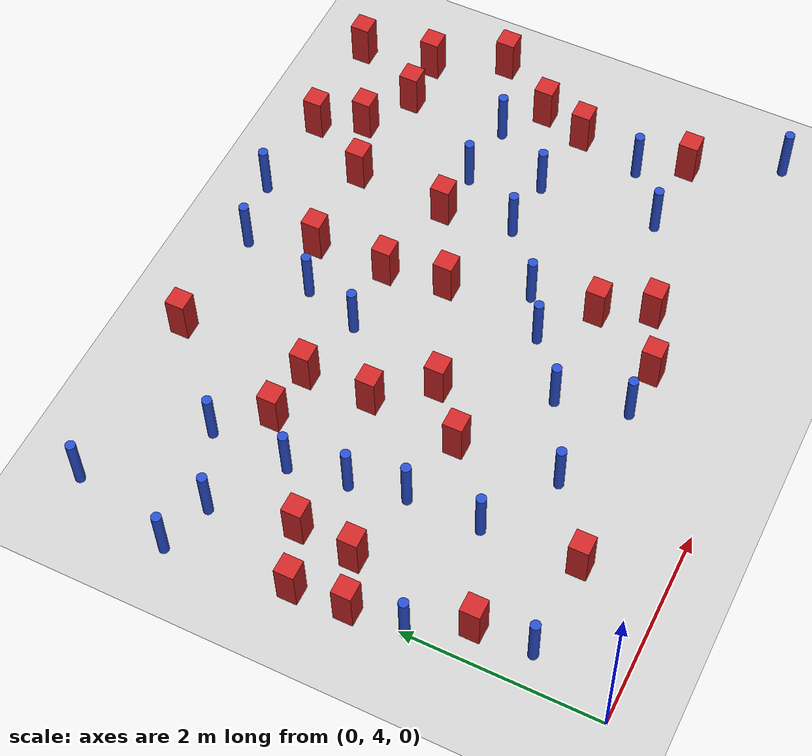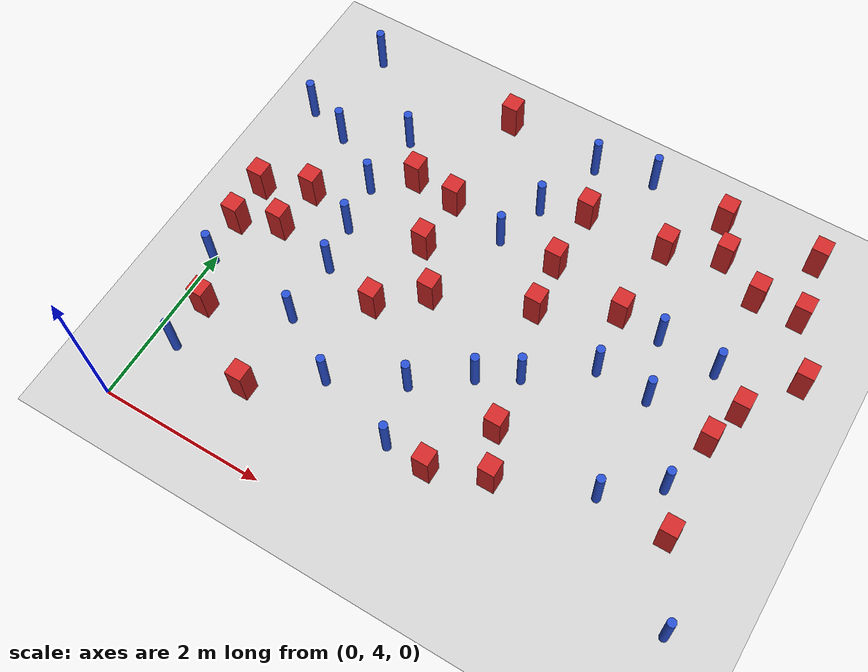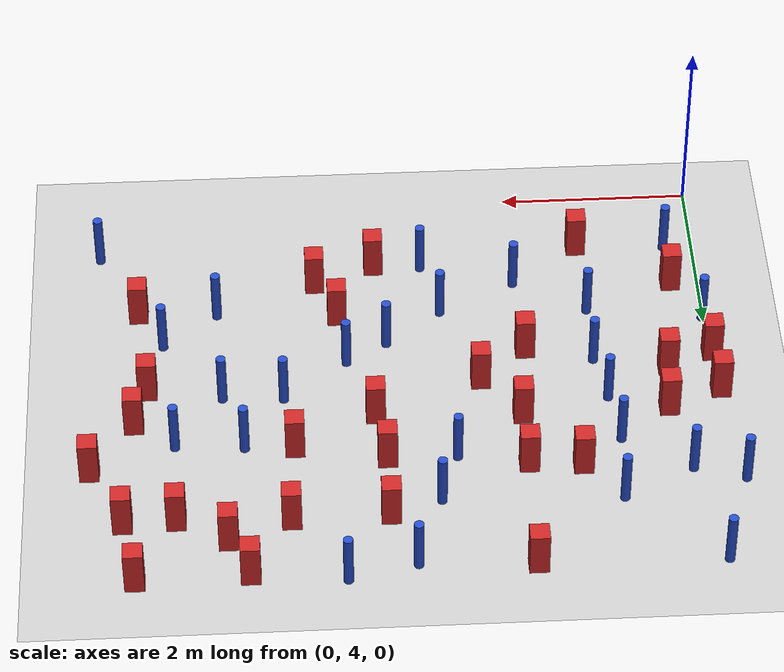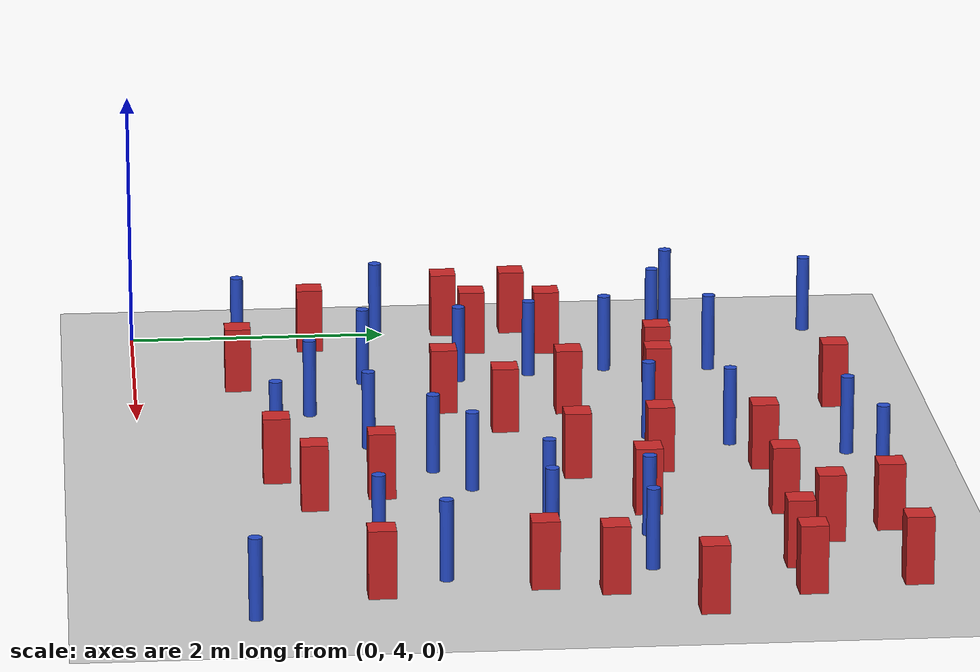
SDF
<sdf version="1.6">
 <world name="default">
  <model name="ground_plane">
   <static>1</static>
   <link name="link">
    <collision name="collision">
     <geometry><plane><normal>0 0 1</normal><size>100 100</size></plane></geometry>
     <surface><friction><ode><mu>100</mu><mu2>50</mu2></ode></friction></surface>
    </collision>
    <visual name="visual">
     <cast_shadows>0</cast_shadows>
     <geometry><plane><normal>0 0 1</normal><size>100 100</size></plane></geometry>
     <material>
      <ambient>1.0 1.0 1.0 1.0</ambient>
      <diffuse>0.8 0.8 0.8 1.0</diffuse>
      <specular>0.01 0.01 0.01 1.000000</specular>
     </material>
    </visual>
   </link>
  </model>
  <model name="square_post_obstacle0">
   <static>true</static>
   <pose>2.42696726722 6.77851667209 -7.80171244635e-07 7.17449752808e-06 -5.6639232126e-07 2.2715510512e-05</pose>
   <link name="link">
    <pose>0 0 0.25 0 -0 0</pose>
    <inertial>
     <mass>100</mass>
     <inertia>
      <ixx>0.166667</ixx>
      <ixy>0</ixy>
      <ixz>0</ixz>
      <iyy>0.166667</iyy>
      <iyz>0</iyz>
      <izz>0.166667</izz>
     </inertia>
    </inertial>
    <collision name="collision"><geometry><box><size>.2 .2 .5</size></box></geometry></collision>
    <visual name="visual">
     <geometry><box><size>.2 .2 .5</size></box></geometry>
     <material>
      <script><name>Gazebo/Red</name><uri>file://media/materials/scripts/gazebo.material</uri></script>
     </material>
    </visual>
   </link>
  </model>
  <model name="pole_obstacle2">
   <static>true</static>
   <pose>4.896897194 7.61736909543 -2.66029137441e-07 -5.69430205655e-07 6.84129966534e-07 -8.68349370984e-08</pose>
   <link name="link">
    <pose>0 0 0.3 0 -0 0</pose>
    <inertial>
     <mass>1</mass>
     <inertia><ixx>0.145833</ixx><ixy>0</ixy><ixz>0</ixz><iyy>0.145833</iyy><iyz>0</iyz><izz>0.125</izz></inertia>
    </inertial>
    <collision name="collision">
     <geometry><cylinder><radius>0.05</radius><length>.6</length></cylinder></geometry>
    </collision>
    <visual name="visual">
     <geometry><cylinder><radius>0.05</radius><length>.6</length></cylinder></geometry>
     <material>
      <script><name>Gazebo/Blue</name><uri>file://media/materials/scripts/gazebo.material</uri></script>
     </material>
    </visual>
   </link>
  </model>
  <model name="pole_obstacle7">
   <static>true</static>
   <pose>0.0134859352943 5.94046858157 -2.66029137441e-07 -5.69430205632e-07 6.84129966561e-07 -8.6834937081e-08</pose>
   <link name="link">
    <pose>0 0 0.3 0 -0 0</pose>
    <inertial>
     <mass>1</mass>
     <inertia><ixx>0.145833</ixx><ixy>0</ixy><ixz>0</ixz><iyy>0.145833</iyy><iyz>0</iyz><izz>0.125</izz></inertia>
    </inertial>
    <collision name="collision">
     <geometry><cylinder><radius>0.05</radius><length>.6</length></cylinder></geometry>
    </collision>
    <visual name="visual">
     <geometry><cylinder><radius>0.05</radius><length>.6</length></cylinder></geometry>
     <material>
      <script><name>Gazebo/Blue</name><uri>file://media/materials/scripts/gazebo.material</uri></script>
     </material>
    </visual>
   </link>
  </model>
  <model name="pole_obstacle16">
   <static>true</static>
   <pose>2.92044114101 8.44013918548 -2.66029137497e-07 -5.69430205676e-07 6.84129966501e-07 -8.6834937112e-08</pose>
   <link name="link">
    <pose>0 0 0.3 0 -0 0</pose>
    <inertial>
     <mass>1</mass>
     <inertia><ixx>0.145833</ixx><ixy>0</ixy><ixz>0</ixz><iyy>0.145833</iyy><iyz>0</iyz><izz>0.125</izz></inertia>
    </inertial>
    <collision name="collision">
     <geometry><cylinder><radius>0.05</radius><length>.6</length></cylinder></geometry>
    </collision>
    <visual name="visual">
     <geometry><cylinder><radius>0.05</radius><length>.6</length></cylinder></geometry>
     <material>
      <script><name>Gazebo/Blue</name><uri>file://media/materials/scripts/gazebo.material</uri></script>
     </material>
    </visual>
   </link>
  </model>
  <model name="pole_obstacle20">
   <static>true</static>
   <pose>3.20089135605 9.28862393456 -2.66029137497e-07 -5.69430205676e-07 6.84129966501e-07 -8.6834937112e-08</pose>
   <link name="link">
    <pose>0 0 0.3 0 -0 0</pose>
    <inertial>
     <mass>1</mass>
     <inertia><ixx>0.145833</ixx><ixy>0</ixy><ixz>0</ixz><iyy>0.145833</iyy><iyz>0</iyz><izz>0.125</izz></inertia>
    </inertial>
    <collision name="collision">
     <geometry><cylinder><radius>0.05</radius><length>.6</length></cylinder></geometry>
    </collision>
    <visual name="visual">
     <geometry><cylinder><radius>0.05</radius><length>.6</length></cylinder></geometry>
     <material>
      <script><name>Gazebo/Blue</name><uri>file://media/materials/scripts/gazebo.material</uri></script>
     </material>
    </visual>
   </link>
  </model>
  <model name="pole_obstacle23">
   <static>true</static>
   <pose>-0.18244795766 8.28740664911 -2.66029137441e-07 -5.69430205656e-07 6.84129966534e-07 -8.68349371007e-08</pose>
   <link name="link">
    <pose>0 0 0.3 0 -0 0</pose>
    <inertial>
     <mass>1</mass>
     <inertia><ixx>0.145833</ixx><ixy>0</ixy><ixz>0</ixz><iyy>0.145833</iyy><iyz>0</iyz><izz>0.125</izz></inertia>
    </inertial>
    <collision name="collision">
     <geometry><cylinder><radius>0.05</radius><length>.6</length></cylinder></geometry>
    </collision>
    <visual name="visual">
     <geometry><cylinder><radius>0.05</radius><length>.6</length></cylinder></geometry>
     <material>
      <script><name>Gazebo/Blue</name><uri>file://media/materials/scripts/gazebo.material</uri></script>
     </material>
    </visual>
   </link>
  </model>
  <model name="pole_obstacle29">
   <static>true</static>
   <pose>5.11539791772 6.89736885478 -2.66029137441e-07 -5.69430205655e-07 6.84129966534e-07 -8.68349370984e-08</pose>
   <link name="link">
    <pose>0 0 0.3 0 -0 0</pose>
    <inertial>
     <mass>1</mass>
     <inertia><ixx>0.145833</ixx><ixy>0</ixy><ixz>0</ixz><iyy>0.145833</iyy><iyz>0</iyz><izz>0.125</izz></inertia>
    </inertial>
    <collision name="collision">
     <geometry><cylinder><radius>0.05</radius><length>.6</length></cylinder></geometry>
    </collision>
    <visual name="visual">
     <geometry><cylinder><radius>0.05</radius><length>.6</length></cylinder></geometry>
     <material>
      <script><name>Gazebo/Blue</name><uri>file://media/materials/scripts/gazebo.material</uri></script>
     </material>
    </visual>
   </link>
  </model>
  <model name="square_post_obstacle22">
   <static>true</static>
   <pose>3.4447813769 7.8526809411 -7.80171244635e-07 7.17449752808e-06 -5.6639232126e-07 2.2715510512e-05</pose>
   <link name="link">
    <pose>0 0 0.25 0 -0 0</pose>
    <inertial>
     <mass>100</mass>
     <inertia>
      <ixx>0.166667</ixx>
      <ixy>0</ixy>
      <ixz>0</ixz>
      <iyy>0.166667</iyy>
      <iyz>0</iyz>
      <izz>0.166667</izz>
     </inertia>
    </inertial>
    <collision name="collision"><geometry><box><size>.2 .2 .5</size></box></geometry></collision>
    <visual name="visual">
     <geometry><box><size>.2 .2 .5</size></box></geometry>
     <material>
      <script><name>Gazebo/Red</name><uri>file://media/materials/scripts/gazebo.material</uri></script>
     </material>
    </visual>
   </link>
  </model>
  <model name="square_post_obstacle23">
   <static>true</static>
   <pose>1.45860795502 8.03859802271 -7.80171244635e-07 7.17449752808e-06 -5.6639232126e-07 2.2715510512e-05</pose>
   <link name="link">
    <pose>0 0 0.25 0 -0 0</pose>
    <inertial>
     <mass>100</mass>
     <inertia>
      <ixx>0.166667</ixx>
      <ixy>0</ixy>
      <ixz>0</ixz>
      <iyy>0.166667</iyy>
      <iyz>0</iyz>
      <izz>0.166667</izz>
     </inertia>
    </inertial>
    <collision name="collision"><geometry><box><size>.2 .2 .5</size></box></geometry></collision>
    <visual name="visual">
     <geometry><box><size>.2 .2 .5</size></box></geometry>
     <material>
      <script><name>Gazebo/Red</name><uri>file://media/materials/scripts/gazebo.material</uri></script>
     </material>
    </visual>
   </link>
  </model>
  <model name="square_post_obstacle24">
   <static>true</static>
   <pose>-0.0614593541173 7.03115845871 -7.80171244635e-07 7.17449752808e-06 -5.6639232126e-07 2.2715510512e-05</pose>
   <link name="link">
    <pose>0 0 0.25 0 -0 0</pose>
    <inertial>
     <mass>100</mass>
     <inertia>
      <ixx>0.166667</ixx>
      <ixy>0</ixy>
      <ixz>0</ixz>
      <iyy>0.166667</iyy>
      <iyz>0</iyz>
      <izz>0.166667</izz>
     </inertia>
    </inertial>
    <collision name="collision"><geometry><box><size>.2 .2 .5</size></box></geometry></collision>
    <visual name="visual">
     <geometry><box><size>.2 .2 .5</size></box></geometry>
     <material>
      <script><name>Gazebo/Red</name><uri>file://media/materials/scripts/gazebo.material</uri></script>
     </material>
    </visual>
   </link>
  </model>
  <model name="pole_obstacle33">
   <static>true</static>
   <pose>0.311722107348 4.82923498585 -2.66029137441e-07 -5.69430205632e-07 6.84129966561e-07 -8.68349370786e-08</pose>
   <link name="link">
    <pose>0 0 0.3 0 -0 0</pose>
    <inertial>
     <mass>1</mass>
     <inertia><ixx>0.145833</ixx><ixy>0</ixy><ixz>0</ixz><iyy>0.145833</iyy><iyz>0</iyz><izz>0.125</izz></inertia>
    </inertial>
    <collision name="collision">
     <geometry><cylinder><radius>0.05</radius><length>.6</length></cylinder></geometry>
    </collision>
    <visual name="visual">
     <geometry><cylinder><radius>0.05</radius><length>.6</length></cylinder></geometry>
     <material>
      <script><name>Gazebo/Blue</name><uri>file://media/materials/scripts/gazebo.material</uri></script>
     </material>
    </visual>
   </link>
  </model>
  <model name="pole_obstacle36">
   <static>true</static>
   <pose>2.79320867123 5.72379660898 -2.66029137441e-07 -5.69430205635e-07 6.84129966557e-07 -8.68349370832e-08</pose>
   <link name="link">
    <pose>0 0 0.3 0 -0 0</pose>
    <inertial>
     <mass>1</mass>
     <inertia><ixx>0.145833</ixx><ixy>0</ixy><ixz>0</ixz><iyy>0.145833</iyy><iyz>0</iyz><izz>0.125</izz></inertia>
    </inertial>
    <collision name="collision">
     <geometry><cylinder><radius>0.05</radius><length>.6</length></cylinder></geometry>
    </collision>
    <visual name="visual">
     <geometry><cylinder><radius>0.05</radius><length>.6</length></cylinder></geometry>
     <material>
      <script><name>Gazebo/Blue</name><uri>file://media/materials/scripts/gazebo.material</uri></script>
     </material>
    </visual>
   </link>
  </model>
  <model name="square_post_obstacle39">
   <static>true</static>
   <pose>0.501162031957 7.26300696352 -7.80171244635e-07 7.17449752808e-06 -5.6639232126e-07 2.2715510512e-05</pose>
   <link name="link">
    <pose>0 0 0.25 0 -0 0</pose>
    <inertial>
     <mass>100</mass>
     <inertia>
      <ixx>0.166667</ixx>
      <ixy>0</ixy>
      <ixz>0</ixz>
      <iyy>0.166667</iyy>
      <iyz>0</iyz>
      <izz>0.166667</izz>
     </inertia>
    </inertial>
    <collision name="collision"><geometry><box><size>.2 .2 .5</size></box></geometry></collision>
    <visual name="visual">
     <geometry><box><size>.2 .2 .5</size></box></geometry>
     <material>
      <script><name>Gazebo/Red</name><uri>file://media/materials/scripts/gazebo.material</uri></script>
     </material>
    </visual>
   </link>
  </model>
  <model name="pole_obstacle50">
   <static>true</static>
   <pose>4.47964296164 6.93329857489 -2.66029137441e-07 -5.69430205655e-07 6.84129966534e-07 -8.68349370984e-08</pose>
   <link name="link">
    <pose>0 0 0.3 0 -0 0</pose>
    <inertial>
     <mass>1</mass>
     <inertia><ixx>0.145833</ixx><ixy>0</ixy><ixz>0</ixz><iyy>0.145833</iyy><iyz>0</iyz><izz>0.125</izz></inertia>
    </inertial>
    <collision name="collision">
     <geometry><cylinder><radius>0.05</radius><length>.6</length></cylinder></geometry>
    </collision>
    <visual name="visual">
     <geometry><cylinder><radius>0.05</radius><length>.6</length></cylinder></geometry>
     <material>
      <script><name>Gazebo/Blue</name><uri>file://media/materials/scripts/gazebo.material</uri></script>
     </material>
    </visual>
   </link>
  </model>
  <model name="pole_obstacle52">
   <static>true</static>
   <pose>0.341316637552 8.12375119244 -2.66029137441e-07 -5.6943020566e-07 6.84129966529e-07 -8.68349371036e-08</pose>
   <link name="link">
    <pose>0 0 0.3 0 -0 0</pose>
    <inertial>
     <mass>1</mass>
     <inertia><ixx>0.145833</ixx><ixy>0</ixy><ixz>0</ixz><iyy>0.145833</iyy><iyz>0</iyz><izz>0.125</izz></inertia>
    </inertial>
    <collision name="collision">
     <geometry><cylinder><radius>0.05</radius><length>.6</length></cylinder></geometry>
    </collision>
    <visual name="visual">
     <geometry><cylinder><radius>0.05</radius><length>.6</length></cylinder></geometry>
     <material>
      <script><name>Gazebo/Blue</name><uri>file://media/materials/scripts/gazebo.material</uri></script>
     </material>
    </visual>
   </link>
  </model>
  <model name="square_post_obstacle40">
   <static>true</static>
   <pose>4.38208292992 7.66289487402 -7.80171244635e-07 7.17449752808e-06 -5.6639232126e-07 2.2715510512e-05</pose>
   <link name="link">
    <pose>0 0 0.25 0 -0 0</pose>
    <inertial>
     <mass>100</mass>
     <inertia>
      <ixx>0.166667</ixx>
      <ixy>0</ixy>
      <ixz>0</ixz>
      <iyy>0.166667</iyy>
      <iyz>0</iyz>
      <izz>0.166667</izz>
     </inertia>
    </inertial>
    <collision name="collision"><geometry><box><size>.2 .2 .5</size></box></geometry></collision>
    <visual name="visual">
     <geometry><box><size>.2 .2 .5</size></box></geometry>
     <material>
      <script><name>Gazebo/Red</name><uri>file://media/materials/scripts/gazebo.material</uri></script>
     </material>
    </visual>
   </link>
  </model>
  <model name="pole_obstacle54">
   <static>true</static>
   <pose>2.7267929593 7.84403673199 -2.66029137441e-07 -5.69430205635e-07 6.84129966557e-07 -8.68349370832e-08</pose>
   <link name="link">
    <pose>0 0 0.3 0 -0 0</pose>
    <inertial>
     <mass>1</mass>
     <inertia><ixx>0.145833</ixx><ixy>0</ixy><ixz>0</ixz><iyy>0.145833</iyy><iyz>0</iyz><izz>0.125</izz></inertia>
    </inertial>
    <collision name="collision">
     <geometry><cylinder><radius>0.05</radius><length>.6</length></cylinder></geometry>
    </collision>
    <visual name="visual">
     <geometry><cylinder><radius>0.05</radius><length>.6</length></cylinder></geometry>
     <material>
      <script><name>Gazebo/Blue</name><uri>file://media/materials/scripts/gazebo.material</uri></script>
     </material>
    </visual>
   </link>
  </model>
  <model name="square_post_obstacle59">
   <static>true</static>
   <pose>6.00521802548 9.39551577378 -7.80171244635e-07 7.17449752808e-06 -5.6639232126e-07 2.2715510512e-05</pose>
   <link name="link">
    <pose>0 0 0.25 0 -0 0</pose>
    <inertial>
     <mass>100</mass>
     <inertia>
      <ixx>0.166667</ixx>
      <ixy>0</ixy>
      <ixz>0</ixz>
      <iyy>0.166667</iyy>
      <iyz>0</iyz>
      <izz>0.166667</izz>
     </inertia>
    </inertial>
    <collision name="collision"><geometry><box><size>.2 .2 .5</size></box></geometry></collision>
    <visual name="visual">
     <geometry><box><size>.2 .2 .5</size></box></geometry>
     <material>
      <script><name>Gazebo/Red</name><uri>file://media/materials/scripts/gazebo.material</uri></script>
     </material>
    </visual>
   </link>
  </model>
  <model name="square_post_obstacle62">
   <static>true</static>
   <pose>3.53915224983 7.22584849224 -7.80171244635e-07 7.17449752808e-06 -5.6639232126e-07 2.2715510512e-05</pose>
   <link name="link">
    <pose>0 0 0.25 0 -0 0</pose>
    <inertial>
     <mass>100</mass>
     <inertia>
      <ixx>0.166667</ixx>
      <ixy>0</ixy>
      <ixz>0</ixz>
      <iyy>0.166667</iyy>
      <iyz>0</iyz>
      <izz>0.166667</izz>
     </inertia>
    </inertial>
    <collision name="collision"><geometry><box><size>.2 .2 .5</size></box></geometry></collision>
    <visual name="visual">
     <geometry><box><size>.2 .2 .5</size></box></geometry>
     <material>
      <script><name>Gazebo/Red</name><uri>file://media/materials/scripts/gazebo.material</uri></script>
     </material>
    </visual>
   </link>
  </model>
  <model name="square_post_obstacle64">
   <static>true</static>
   <pose>5.89181944055 6.77411321795 -7.80171244635e-07 7.17449752808e-06 -5.6639232126e-07 2.2715510512e-05</pose>
   <link name="link">
    <pose>0 0 0.25 0 -0 0</pose>
    <inertial>
     <mass>100</mass>
     <inertia>
      <ixx>0.166667</ixx>
      <ixy>0</ixy>
      <ixz>0</ixz>
      <iyy>0.166667</iyy>
      <iyz>0</iyz>
      <izz>0.166667</izz>
     </inertia>
    </inertial>
    <collision name="collision"><geometry><box><size>.2 .2 .5</size></box></geometry></collision>
    <visual name="visual">
     <geometry><box><size>.2 .2 .5</size></box></geometry>
     <material>
      <script><name>Gazebo/Red</name><uri>file://media/materials/scripts/gazebo.material</uri></script>
     </material>
    </visual>
   </link>
  </model>
  <model name="pole_obstacle78">
   <static>true</static>
   <pose>1.03534336998 7.67522720749 -2.66029137441e-07 -5.69430205636e-07 6.84129966556e-07 -8.68349370832e-08</pose>
   <link name="link">
    <pose>0 0 0.3 0 -0 0</pose>
    <inertial>
     <mass>1</mass>
     <inertia><ixx>0.145833</ixx><ixy>0</ixy><ixz>0</ixz><iyy>0.145833</iyy><iyz>0</iyz><izz>0.125</izz></inertia>
    </inertial>
    <collision name="collision">
     <geometry><cylinder><radius>0.05</radius><length>.6</length></cylinder></geometry>
    </collision>
    <visual name="visual">
     <geometry><cylinder><radius>0.05</radius><length>.6</length></cylinder></geometry>
     <material>
      <script><name>Gazebo/Blue</name><uri>file://media/materials/scripts/gazebo.material</uri></script>
     </material>
    </visual>
   </link>
  </model>
  <model name="pole_obstacle81">
   <static>true</static>
   <pose>1.22909037145 5.77054805977 -2.66029137441e-07 -5.69430205635e-07 6.84129966557e-07 -8.68349370822e-08</pose>
   <link name="link">
    <pose>0 0 0.3 0 -0 0</pose>
    <inertial>
     <mass>1</mass>
     <inertia><ixx>0.145833</ixx><ixy>0</ixy><ixz>0</ixz><iyy>0.145833</iyy><iyz>0</iyz><izz>0.125</izz></inertia>
    </inertial>
    <collision name="collision">
     <geometry><cylinder><radius>0.05</radius><length>.6</length></cylinder></geometry>
    </collision>
    <visual name="visual">
     <geometry><cylinder><radius>0.05</radius><length>.6</length></cylinder></geometry>
     <material>
      <script><name>Gazebo/Blue</name><uri>file://media/materials/scripts/gazebo.material</uri></script>
     </material>
    </visual>
   </link>
  </model>
  <model name="square_post_obstacle77">
   <static>true</static>
   <pose>2.01969151654 9.35141519718 -7.80171244635e-07 7.17449752808e-06 -5.6639232126e-07 2.2715510512e-05</pose>
   <link name="link">
    <pose>0 0 0.25 0 -0 0</pose>
    <inertial>
     <mass>100</mass>
     <inertia>
      <ixx>0.166667</ixx>
      <ixy>0</ixy>
      <ixz>0</ixz>
      <iyy>0.166667</iyy>
      <iyz>0</iyz>
      <izz>0.166667</izz>
     </inertia>
    </inertial>
    <collision name="collision"><geometry><box><size>.2 .2 .5</size></box></geometry></collision>
    <visual name="visual">
     <geometry><box><size>.2 .2 .5</size></box></geometry>
     <material>
      <script><name>Gazebo/Red</name><uri>file://media/materials/scripts/gazebo.material</uri></script>
     </material>
    </visual>
   </link>
  </model>
  <model name="square_post_obstacle82">
   <static>true</static>
   <pose>1.27083559515 4.79778839091 -7.80171244635e-07 7.17449752808e-06 -5.6639232126e-07 2.2715510512e-05</pose>
   <link name="link">
    <pose>0 0 0.25 0 -0 0</pose>
    <inertial>
     <mass>100</mass>
     <inertia>
      <ixx>0.166667</ixx>
      <ixy>0</ixy>
      <ixz>0</ixz>
      <iyy>0.166667</iyy>
      <iyz>0</iyz>
      <izz>0.166667</izz>
     </inertia>
    </inertial>
    <collision name="collision"><geometry><box><size>.2 .2 .5</size></box></geometry></collision>
    <visual name="visual">
     <geometry><box><size>.2 .2 .5</size></box></geometry>
     <material>
      <script><name>Gazebo/Red</name><uri>file://media/materials/scripts/gazebo.material</uri></script>
     </material>
    </visual>
   </link>
  </model>
  <model name="square_post_obstacle85">
   <static>true</static>
   <pose>6.1329894071 8.63097379416 -7.80171244635e-07 7.17449752808e-06 -5.6639232126e-07 2.2715510512e-05</pose>
   <link name="link">
    <pose>0 0 0.25 0 -0 0</pose>
    <inertial>
     <mass>100</mass>
     <inertia>
      <ixx>0.166667</ixx>
      <ixy>0</ixy>
      <ixz>0</ixz>
      <iyy>0.166667</iyy>
      <iyz>0</iyz>
      <izz>0.166667</izz>
     </inertia>
    </inertial>
    <collision name="collision"><geometry><box><size>.2 .2 .5</size></box></geometry></collision>
    <visual name="visual">
     <geometry><box><size>.2 .2 .5</size></box></geometry>
     <material>
      <script><name>Gazebo/Red</name><uri>file://media/materials/scripts/gazebo.material</uri></script>
     </material>
    </visual>
   </link>
  </model>
  <model name="square_post_obstacle89">
   <static>true</static>
   <pose>1.93349561838 6.34976264821 -7.80171244635e-07 7.17449752808e-06 -5.6639232126e-07 2.2715510512e-05</pose>
   <link name="link">
    <pose>0 0 0.25 0 -0 0</pose>
    <inertial>
     <mass>100</mass>
     <inertia>
      <ixx>0.166667</ixx>
      <ixy>0</ixy>
      <ixz>0</ixz>
      <iyy>0.166667</iyy>
      <iyz>0</iyz>
      <izz>0.166667</izz>
     </inertia>
    </inertial>
    <collision name="collision"><geometry><box><size>.2 .2 .5</size></box></geometry></collision>
    <visual name="visual">
     <geometry><box><size>.2 .2 .5</size></box></geometry>
     <material>
      <script><name>Gazebo/Red</name><uri>file://media/materials/scripts/gazebo.material</uri></script>
     </material>
    </visual>
   </link>
  </model>
  <model name="pole_obstacle106">
   <static>true</static>
   <pose>5.73167520196 6.09619928811 -2.66029137441e-07 -5.69430205655e-07 6.84129966534e-07 -8.68349370984e-08</pose>
   <link name="link">
    <pose>0 0 0.3 0 -0 0</pose>
    <inertial>
     <mass>1</mass>
     <inertia><ixx>0.145833</ixx><ixy>0</ixy><ixz>0</ixz><iyy>0.145833</iyy><iyz>0</iyz><izz>0.125</izz></inertia>
    </inertial>
    <collision name="collision">
     <geometry><cylinder><radius>0.05</radius><length>.6</length></cylinder></geometry>
    </collision>
    <visual name="visual">
     <geometry><cylinder><radius>0.05</radius><length>.6</length></cylinder></geometry>
     <material>
      <script><name>Gazebo/Blue</name><uri>file://media/materials/scripts/gazebo.material</uri></script>
     </material>
    </visual>
   </link>
  </model>
  <model name="square_post_obstacle108">
   <static>true</static>
   <pose>4.11152422409 5.24947345704 -7.80171244635e-07 7.17449752808e-06 -5.6639232126e-07 2.2715510512e-05</pose>
   <link name="link">
    <pose>0 0 0.25 0 -0 0</pose>
    <inertial>
     <mass>100</mass>
     <inertia>
      <ixx>0.166667</ixx>
      <ixy>0</ixy>
      <ixz>0</ixz>
      <iyy>0.166667</iyy>
      <iyz>0</iyz>
      <izz>0.166667</izz>
     </inertia>
    </inertial>
    <collision name="collision"><geometry><box><size>.2 .2 .5</size></box></geometry></collision>
    <visual name="visual">
     <geometry><box><size>.2 .2 .5</size></box></geometry>
     <material>
      <script><name>Gazebo/Red</name><uri>file://media/materials/scripts/gazebo.material</uri></script>
     </material>
    </visual>
   </link>
  </model>
  <model name="square_post_obstacle117">
   <static>true</static>
   <pose>5.98982013676 5.62422176253 -7.80171244635e-07 7.17449752808e-06 -5.6639232126e-07 2.2715510512e-05</pose>
   <link name="link">
    <pose>0 0 0.25 0 -0 0</pose>
    <inertial>
     <mass>100</mass>
     <inertia>
      <ixx>0.166667</ixx>
      <ixy>0</ixy>
      <ixz>0</ixz>
      <iyy>0.166667</iyy>
      <iyz>0</iyz>
      <izz>0.166667</izz>
     </inertia>
    </inertial>
    <collision name="collision"><geometry><box><size>.2 .2 .5</size></box></geometry></collision>
    <visual name="visual">
     <geometry><box><size>.2 .2 .5</size></box></geometry>
     <material>
      <script><name>Gazebo/Red</name><uri>file://media/materials/scripts/gazebo.material</uri></script>
     </material>
    </visual>
   </link>
  </model>
  <model name="square_post_obstacle118">
   <static>true</static>
   <pose>5.07339611899 8.90335020163 -7.80171244635e-07 7.17449752808e-06 -5.6639232126e-07 2.2715510512e-05</pose>
   <link name="link">
    <pose>0 0 0.25 0 -0 0</pose>
    <inertial>
     <mass>100</mass>
     <inertia>
      <ixx>0.166667</ixx>
      <ixy>0</ixy>
      <ixz>0</ixz>
      <iyy>0.166667</iyy>
      <iyz>0</iyz>
      <izz>0.166667</izz>
     </inertia>
    </inertial>
    <collision name="collision"><geometry><box><size>.2 .2 .5</size></box></geometry></collision>
    <visual name="visual">
     <geometry><box><size>.2 .2 .5</size></box></geometry>
     <material>
      <script><name>Gazebo/Red</name><uri>file://media/materials/scripts/gazebo.material</uri></script>
     </material>
    </visual>
   </link>
  </model>
  <model name="pole_obstacle122">
   <static>true</static>
   <pose>1.0762815392 8.49230613057 -2.66029137441e-07 -5.69430205648e-07 6.84129966543e-07 -8.68349370925e-08</pose>
   <link name="link">
    <pose>0 0 0.3 0 -0 0</pose>
    <inertial>
     <mass>1</mass>
     <inertia><ixx>0.145833</ixx><ixy>0</ixy><ixz>0</ixz><iyy>0.145833</iyy><iyz>0</iyz><izz>0.125</izz></inertia>
    </inertial>
    <collision name="collision">
     <geometry><cylinder><radius>0.05</radius><length>.6</length></cylinder></geometry>
    </collision>
    <visual name="visual">
     <geometry><cylinder><radius>0.05</radius><length>.6</length></cylinder></geometry>
     <material>
      <script><name>Gazebo/Blue</name><uri>file://media/materials/scripts/gazebo.material</uri></script>
     </material>
    </visual>
   </link>
  </model>
  <model name="pole_obstacle130">
   <static>true</static>
   <pose>0.121074025638 9.36736355435 -2.66029137441e-07 -5.6943020566e-07 6.84129966528e-07 -8.68349371039e-08</pose>
   <link name="link">
    <pose>0 0 0.3 0 -0 0</pose>
    <inertial>
     <mass>1</mass>
     <inertia><ixx>0.145833</ixx><ixy>0</ixy><ixz>0</ixz><iyy>0.145833</iyy><iyz>0</iyz><izz>0.125</izz></inertia>
    </inertial>
    <collision name="collision">
     <geometry><cylinder><radius>0.05</radius><length>.6</length></cylinder></geometry>
    </collision>
    <visual name="visual">
     <geometry><cylinder><radius>0.05</radius><length>.6</length></cylinder></geometry>
     <material>
      <script><name>Gazebo/Blue</name><uri>file://media/materials/scripts/gazebo.material</uri></script>
     </material>
    </visual>
   </link>
  </model>
  <model name="square_post_obstacle127">
   <static>true</static>
   <pose>0.299683014765 5.40118780475 -7.80171244635e-07 7.17449752808e-06 -5.6639232126e-07 2.2715510512e-05</pose>
   <link name="link">
    <pose>0 0 0.25 0 -0 0</pose>
    <inertial>
     <mass>100</mass>
     <inertia>
      <ixx>0.166667</ixx>
      <ixy>0</ixy>
      <ixz>0</ixz>
      <iyy>0.166667</iyy>
      <iyz>0</iyz>
      <izz>0.166667</izz>
     </inertia>
    </inertial>
    <collision name="collision"><geometry><box><size>.2 .2 .5</size></box></geometry></collision>
    <visual name="visual">
     <geometry><box><size>.2 .2 .5</size></box></geometry>
     <material>
      <script><name>Gazebo/Red</name><uri>file://media/materials/scripts/gazebo.material</uri></script>
     </material>
    </visual>
   </link>
  </model>
  <model name="square_post_obstacle128">
   <static>true</static>
   <pose>3.44204270393 8.63012637286 -7.80171244635e-07 7.17449752808e-06 -5.6639232126e-07 2.2715510512e-05</pose>
   <link name="link">
    <pose>0 0 0.25 0 -0 0</pose>
    <inertial>
     <mass>100</mass>
     <inertia>
      <ixx>0.166667</ixx>
      <ixy>0</ixy>
      <ixz>0</ixz>
      <iyy>0.166667</iyy>
      <iyz>0</iyz>
      <izz>0.166667</izz>
     </inertia>
    </inertial>
    <collision name="collision"><geometry><box><size>.2 .2 .5</size></box></geometry></collision>
    <visual name="visual">
     <geometry><box><size>.2 .2 .5</size></box></geometry>
     <material>
      <script><name>Gazebo/Red</name><uri>file://media/materials/scripts/gazebo.material</uri></script>
     </material>
    </visual>
   </link>
  </model>
  <model name="square_post_obstacle131">
   <static>true</static>
   <pose>3.88906603849 5.75302455559 -7.80171244635e-07 7.17449752808e-06 -5.6639232126e-07 2.2715510512e-05</pose>
   <link name="link">
    <pose>0 0 0.25 0 -0 0</pose>
    <inertial>
     <mass>100</mass>
     <inertia>
      <ixx>0.166667</ixx>
      <ixy>0</ixy>
      <ixz>0</ixz>
      <iyy>0.166667</iyy>
      <iyz>0</iyz>
      <izz>0.166667</izz>
     </inertia>
    </inertial>
    <collision name="collision"><geometry><box><size>.2 .2 .5</size></box></geometry></collision>
    <visual name="visual">
     <geometry><box><size>.2 .2 .5</size></box></geometry>
     <material>
      <script><name>Gazebo/Red</name><uri>file://media/materials/scripts/gazebo.material</uri></script>
     </material>
    </visual>
   </link>
  </model>
  <model name="square_post_obstacle134">
   <static>true</static>
   <pose>3.47468415277 5.0005177728 -7.80171244635e-07 7.17449752808e-06 -5.6639232126e-07 2.2715510512e-05</pose>
   <link name="link">
    <pose>0 0 0.25 0 -0 0</pose>
    <inertial>
     <mass>100</mass>
     <inertia>
      <ixx>0.166667</ixx>
      <ixy>0</ixy>
      <ixz>0</ixz>
      <iyy>0.166667</iyy>
      <iyz>0</iyz>
      <izz>0.166667</izz>
     </inertia>
    </inertial>
    <collision name="collision"><geometry><box><size>.2 .2 .5</size></box></geometry></collision>
    <visual name="visual">
     <geometry><box><size>.2 .2 .5</size></box></geometry>
     <material>
      <script><name>Gazebo/Red</name><uri>file://media/materials/scripts/gazebo.material</uri></script>
     </material>
    </visual>
   </link>
  </model>
  <model name="pole_obstacle139">
   <static>true</static>
   <pose>5.60876281728 7.56780973969 -2.66029137441e-07 -5.69430205655e-07 6.84129966534e-07 -8.68349370984e-08</pose>
   <link name="link">
    <pose>0 0 0.3 0 -0 0</pose>
    <inertial>
     <mass>1</mass>
     <inertia><ixx>0.145833</ixx><ixy>0</ixy><ixz>0</ixz><iyy>0.145833</iyy><iyz>0</iyz><izz>0.125</izz></inertia>
    </inertial>
    <collision name="collision">
     <geometry><cylinder><radius>0.05</radius><length>.6</length></cylinder></geometry>
    </collision>
    <visual name="visual">
     <geometry><cylinder><radius>0.05</radius><length>.6</length></cylinder></geometry>
     <material>
      <script><name>Gazebo/Blue</name><uri>file://media/materials/scripts/gazebo.material</uri></script>
     </material>
    </visual>
   </link>
  </model>
  <model name="square_post_obstacle140">
   <static>true</static>
   <pose>-0.0285216879559 6.48450969746 -7.80171244635e-07 7.17449752808e-06 -5.6639232126e-07 2.2715510512e-05</pose>
   <link name="link">
    <pose>0 0 0.25 0 -0 0</pose>
    <inertial>
     <mass>100</mass>
     <inertia>
      <ixx>0.166667</ixx>
      <ixy>0</ixy>
      <ixz>0</ixz>
      <iyy>0.166667</iyy>
      <iyz>0</iyz>
      <izz>0.166667</izz>
     </inertia>
    </inertial>
    <collision name="collision"><geometry><box><size>.2 .2 .5</size></box></geometry></collision>
    <visual name="visual">
     <geometry><box><size>.2 .2 .5</size></box></geometry>
     <material>
      <script><name>Gazebo/Red</name><uri>file://media/materials/scripts/gazebo.material</uri></script>
     </material>
    </visual>
   </link>
  </model>
  <model name="pole_obstacle159">
   <static>true</static>
   <pose>6.41002583726 4.72884771015 -2.66029137441e-07 -5.69430205655e-07 6.84129966534e-07 -8.68349370984e-08</pose>
   <link name="link">
    <pose>0 0 0.3 0 -0 0</pose>
    <inertial>
     <mass>1</mass>
     <inertia><ixx>0.145833</ixx><ixy>0</ixy><ixz>0</ixz><iyy>0.145833</iyy><iyz>0</iyz><izz>0.125</izz></inertia>
    </inertial>
    <collision name="collision">
     <geometry><cylinder><radius>0.05</radius><length>.6</length></cylinder></geometry>
    </collision>
    <visual name="visual">
     <geometry><cylinder><radius>0.05</radius><length>.6</length></cylinder></geometry>
     <material>
      <script><name>Gazebo/Blue</name><uri>file://media/materials/scripts/gazebo.material</uri></script>
     </material>
    </visual>
   </link>
  </model>
  <model name="pole_obstacle161">
   <static>true</static>
   <pose>1.11803599478 7.07503367718 -2.66029137441e-07 -5.69430205635e-07 6.84129966557e-07 -8.68349370822e-08</pose>
   <link name="link">
    <pose>0 0 0.3 0 -0 0</pose>
    <inertial>
     <mass>1</mass>
     <inertia><ixx>0.145833</ixx><ixy>0</ixy><ixz>0</ixz><iyy>0.145833</iyy><iyz>0</iyz><izz>0.125</izz></inertia>
    </inertial>
    <collision name="collision">
     <geometry><cylinder><radius>0.05</radius><length>.6</length></cylinder></geometry>
    </collision>
    <visual name="visual">
     <geometry><cylinder><radius>0.05</radius><length>.6</length></cylinder></geometry>
     <material>
      <script><name>Gazebo/Blue</name><uri>file://media/materials/scripts/gazebo.material</uri></script>
     </material>
    </visual>
   </link>
  </model>
  <model name="square_post_obstacle157">
   <static>true</static>
   <pose>2.02191887886 7.30007694622 -7.80171244635e-07 7.17449752808e-06 -5.6639232126e-07 2.2715510512e-05</pose>
   <link name="link">
    <pose>0 0 0.25 0 -0 0</pose>
    <inertial>
     <mass>100</mass>
     <inertia>
      <ixx>0.166667</ixx>
      <ixy>0</ixy>
      <ixz>0</ixz>
      <iyy>0.166667</iyy>
      <iyz>0</iyz>
      <izz>0.166667</izz>
     </inertia>
    </inertial>
    <collision name="collision"><geometry><box><size>.2 .2 .5</size></box></geometry></collision>
    <visual name="visual">
     <geometry><box><size>.2 .2 .5</size></box></geometry>
     <material>
      <script><name>Gazebo/Red</name><uri>file://media/materials/scripts/gazebo.material</uri></script>
     </material>
    </visual>
   </link>
  </model>
  <model name="square_post_obstacle159">
   <static>true</static>
   <pose>6.4745163194 7.8998162694 -7.80171244635e-07 7.17449752808e-06 -5.6639232126e-07 2.2715510512e-05</pose>
   <link name="link">
    <pose>0 0 0.25 0 -0 0</pose>
    <inertial>
     <mass>100</mass>
     <inertia>
      <ixx>0.166667</ixx>
      <ixy>0</ixy>
      <ixz>0</ixz>
      <iyy>0.166667</iyy>
      <iyz>0</iyz>
      <izz>0.166667</izz>
     </inertia>
    </inertial>
    <collision name="collision"><geometry><box><size>.2 .2 .5</size></box></geometry></collision>
    <visual name="visual">
     <geometry><box><size>.2 .2 .5</size></box></geometry>
     <material>
      <script><name>Gazebo/Red</name><uri>file://media/materials/scripts/gazebo.material</uri></script>
     </material>
    </visual>
   </link>
  </model>
  <model name="square_post_obstacle162">
   <static>true</static>
   <pose>6.02978747185 7.25673229404 -7.80171244635e-07 7.17449752808e-06 -5.6639232126e-07 2.2715510512e-05</pose>
   <link name="link">
    <pose>0 0 0.25 0 -0 0</pose>
    <inertial>
     <mass>100</mass>
     <inertia>
      <ixx>0.166667</ixx>
      <ixy>0</ixy>
      <ixz>0</ixz>
      <iyy>0.166667</iyy>
      <iyz>0</iyz>
      <izz>0.166667</izz>
     </inertia>
    </inertial>
    <collision name="collision"><geometry><box><size>.2 .2 .5</size></box></geometry></collision>
    <visual name="visual">
     <geometry><box><size>.2 .2 .5</size></box></geometry>
     <material>
      <script><name>Gazebo/Red</name><uri>file://media/materials/scripts/gazebo.material</uri></script>
     </material>
    </visual>
   </link>
  </model>
  <model name="square_post_obstacle170">
   <static>true</static>
   <pose>0.455581609898 6.67568415262 -7.80171244635e-07 7.17449752808e-06 -5.6639232126e-07 2.2715510512e-05</pose>
   <link name="link">
    <pose>0 0 0.25 0 -0 0</pose>
    <inertial>
     <mass>100</mass>
     <inertia>
      <ixx>0.166667</ixx>
      <ixy>0</ixy>
      <ixz>0</ixz>
      <iyy>0.166667</iyy>
      <iyz>0</iyz>
      <izz>0.166667</izz>
     </inertia>
    </inertial>
    <collision name="collision"><geometry><box><size>.2 .2 .5</size></box></geometry></collision>
    <visual name="visual">
     <geometry><box><size>.2 .2 .5</size></box></geometry>
     <material>
      <script><name>Gazebo/Red</name><uri>file://media/materials/scripts/gazebo.material</uri></script>
     </material>
    </visual>
   </link>
  </model>
  <model name="square_post_obstacle181">
   <static>true</static>
   <pose>4.43964480585 8.65428867475 -7.80171244635e-07 7.17449752808e-06 -5.6639232126e-07 2.2715510512e-05</pose>
   <link name="link">
    <pose>0 0 0.25 0 -0 0</pose>
    <inertial>
     <mass>100</mass>
     <inertia>
      <ixx>0.166667</ixx>
      <ixy>0</ixy>
      <ixz>0</ixz>
      <iyy>0.166667</iyy>
      <iyz>0</iyz>
      <izz>0.166667</izz>
     </inertia>
    </inertial>
    <collision name="collision"><geometry><box><size>.2 .2 .5</size></box></geometry></collision>
    <visual name="visual">
     <geometry><box><size>.2 .2 .5</size></box></geometry>
     <material>
      <script><name>Gazebo/Red</name><uri>file://media/materials/scripts/gazebo.material</uri></script>
     </material>
    </visual>
   </link>
  </model>
  <model name="pole_obstacle182">
   <static>true</static>
   <pose>1.98600449276 5.32149638776 -2.66029137441e-07 -5.69430205622e-07 6.84129966572e-07 -8.68349370721e-08</pose>
   <link name="link">
    <pose>0 0 0.3 0 -0 0</pose>
    <inertial>
     <mass>1</mass>
     <inertia><ixx>0.145833</ixx><ixy>0</ixy><ixz>0</ixz><iyy>0.145833</iyy><iyz>0</iyz><izz>0.125</izz></inertia>
    </inertial>
    <collision name="collision">
     <geometry><cylinder><radius>0.05</radius><length>.6</length></cylinder></geometry>
    </collision>
    <visual name="visual">
     <geometry><cylinder><radius>0.05</radius><length>.6</length></cylinder></geometry>
     <material>
      <script><name>Gazebo/Blue</name><uri>file://media/materials/scripts/gazebo.material</uri></script>
     </material>
    </visual>
   </link>
  </model>
  <model name="pole_obstacle184">
   <static>true</static>
   <pose>2.96888551262 5.02177878982 -2.66029137441e-07 -5.69430205635e-07 6.84129966557e-07 -8.68349370832e-08</pose>
   <link name="link">
    <pose>0 0 0.3 0 -0 0</pose>
    <inertial>
     <mass>1</mass>
     <inertia><ixx>0.145833</ixx><ixy>0</ixy><ixz>0</ixz><iyy>0.145833</iyy><iyz>0</iyz><izz>0.125</izz></inertia>
    </inertial>
    <collision name="collision">
     <geometry><cylinder><radius>0.05</radius><length>.6</length></cylinder></geometry>
    </collision>
    <visual name="visual">
     <geometry><cylinder><radius>0.05</radius><length>.6</length></cylinder></geometry>
     <material>
      <script><name>Gazebo/Blue</name><uri>file://media/materials/scripts/gazebo.material</uri></script>
     </material>
    </visual>
   </link>
  </model>
  <model name="square_post_obstacle203">
   <static>true</static>
   <pose>2.00852318839 7.990527309 -7.80171244635e-07 7.17449752808e-06 -5.6639232126e-07 2.2715510512e-05</pose>
   <link name="link">
    <pose>0 0 0.25 0 -0 0</pose>
    <inertial>
     <mass>100</mass>
     <inertia>
      <ixx>0.166667</ixx>
      <ixy>0</ixy>
      <ixz>0</ixz>
      <iyy>0.166667</iyy>
      <iyz>0</iyz>
      <izz>0.166667</izz>
     </inertia>
    </inertial>
    <collision name="collision"><geometry><box><size>.2 .2 .5</size></box></geometry></collision>
    <visual name="visual">
     <geometry><box><size>.2 .2 .5</size></box></geometry>
     <material>
      <script><name>Gazebo/Red</name><uri>file://media/materials/scripts/gazebo.material</uri></script>
     </material>
    </visual>
   </link>
  </model>
  <model name="pole_obstacle200">
   <static>true</static>
   <pose>3.90249086721 9.45570449463 -2.66029137497e-07 -5.69430205676e-07 6.84129966501e-07 -8.6834937112e-08</pose>
   <link name="link">
    <pose>0 0 0.3 0 -0 0</pose>
    <inertial>
     <mass>1</mass>
     <inertia><ixx>0.145833</ixx><ixy>0</ixy><ixz>0</ixz><iyy>0.145833</iyy><iyz>0</iyz><izz>0.125</izz></inertia>
    </inertial>
    <collision name="collision">
     <geometry><cylinder><radius>0.05</radius><length>.6</length></cylinder></geometry>
    </collision>
    <visual name="visual">
     <geometry><cylinder><radius>0.05</radius><length>.6</length></cylinder></geometry>
     <material>
      <script><name>Gazebo/Blue</name><uri>file://media/materials/scripts/gazebo.material</uri></script>
     </material>
    </visual>
   </link>
  </model>
  <model name="pole_obstacle201">
   <static>true</static>
   <pose>1.2245789102 6.5176110002 -2.66029137441e-07 -5.69430205635e-07 6.84129966557e-07 -8.68349370822e-08</pose>
   <link name="link">
    <pose>0 0 0.3 0 -0 0</pose>
    <inertial>
     <mass>1</mass>
     <inertia><ixx>0.145833</ixx><ixy>0</ixy><ixz>0</ixz><iyy>0.145833</iyy><iyz>0</iyz><izz>0.125</izz></inertia>
    </inertial>
    <collision name="collision">
     <geometry><cylinder><radius>0.05</radius><length>.6</length></cylinder></geometry>
    </collision>
    <visual name="visual">
     <geometry><cylinder><radius>0.05</radius><length>.6</length></cylinder></geometry>
     <material>
      <script><name>Gazebo/Blue</name><uri>file://media/materials/scripts/gazebo.material</uri></script>
     </material>
    </visual>
   </link>
  </model>
  <model name="pole_obstacle207">
   <static>true</static>
   <pose>5.16084056874 5.65539417212 -2.66029137441e-07 -5.69430205655e-07 6.84129966534e-07 -8.68349370984e-08</pose>
   <link name="link">
    <pose>0 0 0.3 0 -0 0</pose>
    <inertial>
     <mass>1</mass>
     <inertia><ixx>0.145833</ixx><ixy>0</ixy><ixz>0</ixz><iyy>0.145833</iyy><iyz>0</iyz><izz>0.125</izz></inertia>
    </inertial>
    <collision name="collision">
     <geometry><cylinder><radius>0.05</radius><length>.6</length></cylinder></geometry>
    </collision>
    <visual name="visual">
     <geometry><cylinder><radius>0.05</radius><length>.6</length></cylinder></geometry>
     <material>
      <script><name>Gazebo/Blue</name><uri>file://media/materials/scripts/gazebo.material</uri></script>
     </material>
    </visual>
   </link>
  </model>
  <model name="square_post_obstacle209">
   <static>true</static>
   <pose>4.86141190298 9.36455534404 -7.80171244635e-07 7.17449752808e-06 -5.6639232126e-07 2.2715510512e-05</pose>
   <link name="link">
    <pose>0 0 0.25 0 -0 0</pose>
    <inertial>
     <mass>100</mass>
     <inertia>
      <ixx>0.166667</ixx>
      <ixy>0</ixy>
      <ixz>0</ixz>
      <iyy>0.166667</iyy>
      <iyz>0</iyz>
      <izz>0.166667</izz>
     </inertia>
    </inertial>
    <collision name="collision"><geometry><box><size>.2 .2 .5</size></box></geometry></collision>
    <visual name="visual">
     <geometry><box><size>.2 .2 .5</size></box></geometry>
     <material>
      <script><name>Gazebo/Red</name><uri>file://media/materials/scripts/gazebo.material</uri></script>
     </material>
    </visual>
   </link>
  </model>
  <model name="square_post_obstacle211">
   <static>true</static>
   <pose>5.59485348973 8.61327226319 -7.80171244635e-07 7.17449752808e-06 -5.6639232126e-07 2.2715510512e-05</pose>
   <link name="link">
    <pose>0 0 0.25 0 -0 0</pose>
    <inertial>
     <mass>100</mass>
     <inertia>
      <ixx>0.166667</ixx>
      <ixy>0</ixy>
      <ixz>0</ixz>
      <iyy>0.166667</iyy>
      <iyz>0</iyz>
      <izz>0.166667</izz>
     </inertia>
    </inertial>
    <collision name="collision"><geometry><box><size>.2 .2 .5</size></box></geometry></collision>
    <visual name="visual">
     <geometry><box><size>.2 .2 .5</size></box></geometry>
     <material>
      <script><name>Gazebo/Red</name><uri>file://media/materials/scripts/gazebo.material</uri></script>
     </material>
    </visual>
   </link>
  </model>
  <model name="pole_obstacle220">
   <static>true</static>
   <pose>3.81195000888 6.42723002004 -2.66029137497e-07 -5.69430205671e-07 6.84129966507e-07 -8.68349371095e-08</pose>
   <link name="link">
    <pose>0 0 0.3 0 -0 0</pose>
    <inertial>
     <mass>1</mass>
     <inertia><ixx>0.145833</ixx><ixy>0</ixy><ixz>0</ixz><iyy>0.145833</iyy><iyz>0</iyz><izz>0.125</izz></inertia>
    </inertial>
    <collision name="collision">
     <geometry><cylinder><radius>0.05</radius><length>.6</length></cylinder></geometry>
    </collision>
    <visual name="visual">
     <geometry><cylinder><radius>0.05</radius><length>.6</length></cylinder></geometry>
     <material>
      <script><name>Gazebo/Blue</name><uri>file://media/materials/scripts/gazebo.material</uri></script>
     </material>
    </visual>
   </link>
  </model>
  <model name="pole_obstacle222">
   <static>true</static>
   <pose>3.38174000888 6.16849002004 -2.66029137497e-07 -5.69430205671e-07 6.84129966507e-07 -8.68349371095e-08</pose>
   <link name="link">
    <pose>0 0 0.3 0 -0 0</pose>
    <inertial>
     <mass>1</mass>
     <inertia><ixx>0.145833</ixx><ixy>0</ixy><ixz>0</ixz><iyy>0.145833</iyy><iyz>0</iyz><izz>0.125</izz></inertia>
    </inertial>
    <collision name="collision">
     <geometry><cylinder><radius>0.05</radius><length>.6</length></cylinder></geometry>
    </collision>
    <visual name="visual">
     <geometry><cylinder><radius>0.05</radius><length>.6</length></cylinder></geometry>
     <material>
      <script><name>Gazebo/Blue</name><uri>file://media/materials/scripts/gazebo.material</uri></script>
     </material>
    </visual>
   </link>
  </model>
 </world>
</sdf>
